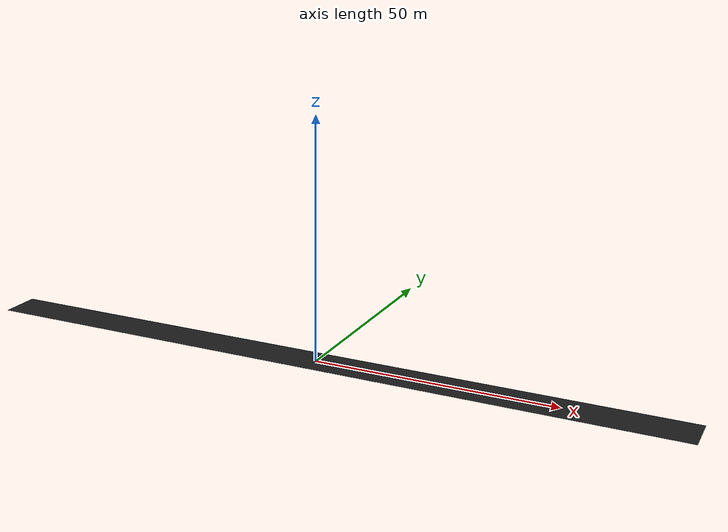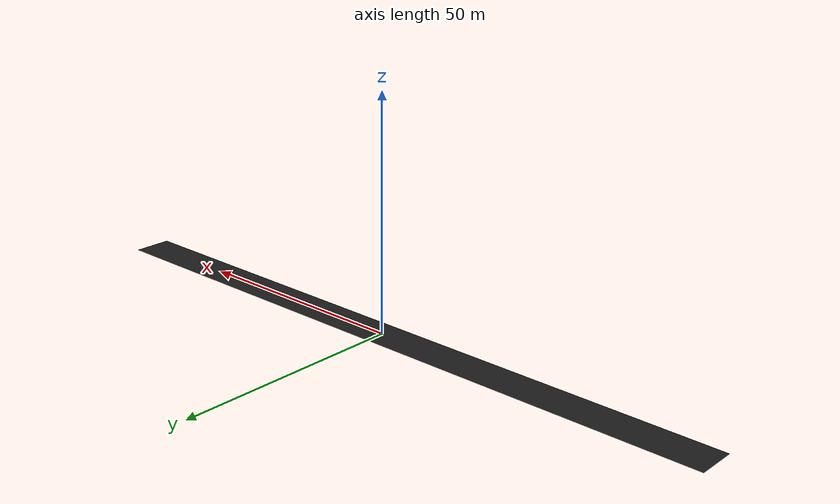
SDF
<?xml version="1.0" ?>

<sdf version="1.7">
<model name='road'>
      <static>1</static>
      <link name='link'>
        <collision name='collision'>
          <laser_retro>4</laser_retro>
          <geometry>
            <box>
              <size>150 8.4 0.03</size>
            </box>
          </geometry>
          <max_contacts>10</max_contacts>
          <surface>
            <contact>
              <ode/>
            </contact>
            <bounce/>
            <friction>
              <torsional>
                <ode/>
              </torsional>
              <ode/>
            </friction>
          </surface>
        </collision>
        <visual name='visual'>
          <laser_retro>4</laser_retro>
          <geometry>
            <box>
              <size>150 8.4 0.03</size>
            </box>
          </geometry>
          <material>
            <script>
              <uri>file://media/materials/scripts/gazebo.material</uri>
              <name>Gazebo/Black</name>
            </script>
          </material>
        </visual>
        <self_collide>0</self_collide>
        <enable_wind>0</enable_wind>
        <kinematic>0</kinematic>
      </link>
    </model>
</sdf>
